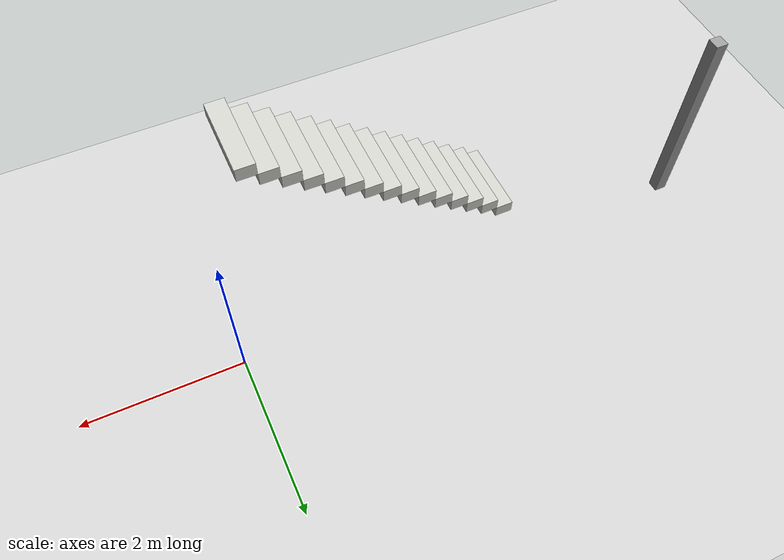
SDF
<sdf version="1.6">
 <world name="default">
  <model name="ground_plane">
   <static>1</static>
   <link name="link">
    <collision name="collision">
     <geometry><plane><normal>0 0 1</normal><size>100 100</size></plane></geometry>
     <surface><friction><ode><mu>100</mu><mu2>50</mu2></ode></friction></surface>
    </collision>
    <visual name="visual">
     <cast_shadows>0</cast_shadows>
     <geometry><plane><normal>0 0 1</normal><size>100 100</size></plane></geometry>
     <material>
      <script><uri>file://media/materials/scripts/gazebo.material</uri><name>Gazebo/Grey</name></script>
     </material>
    </visual>
   </link>
  </model>
  <model name="Building">
   <link name="Stairs_0">
    <pose>0 0.612988 0 0 -0 0</pose>
    <visual name="Stairs_0_Visual_0">
     <pose>2.30777 -1.25113 0.083333 0 -0 1.5708</pose>
     <geometry><box><size>1 0.233333 0.166667</size></box></geometry>
     <material>
      <script><uri>file://media/materials/scripts/gazebo.material</uri><name>Gazebo/CeilingTiled</name></script>
      <ambient>1 1 1 1</ambient>
      <shader type="pixel"/>
      <diffuse>1 1 1 1</diffuse>
      <specular>0 0 0 1</specular>
      <emissive>0 0 0 1</emissive>
     </material>
     <meta><layer>0</layer></meta>
    </visual>
    <visual name="Stairs_0_Visual_1">
     <pose>2.5411 -1.25113 0.25 0 -0 1.5708</pose>
     <geometry><box><size>1 0.233333 0.166667</size></box></geometry>
     <material>
      <script><uri>file://media/materials/scripts/gazebo.material</uri><name>Gazebo/CeilingTiled</name></script>
      <ambient>1 1 1 1</ambient>
      <shader type="pixel"/>
      <diffuse>1 1 1 1</diffuse>
      <specular>0 0 0 1</specular>
      <emissive>0 0 0 1</emissive>
     </material>
     <meta><layer>0</layer></meta>
    </visual>
    <visual name="Stairs_0_Visual_2">
     <pose>2.77444 -1.25113 0.416667 0 -0 1.5708</pose>
     <geometry><box><size>1 0.233333 0.166667</size></box></geometry>
     <material>
      <script><uri>file://media/materials/scripts/gazebo.material</uri><name>Gazebo/CeilingTiled</name></script>
      <ambient>1 1 1 1</ambient>
      <shader type="pixel"/>
      <diffuse>1 1 1 1</diffuse>
      <specular>0 0 0 1</specular>
      <emissive>0 0 0 1</emissive>
     </material>
     <meta><layer>0</layer></meta>
    </visual>
    <visual name="Stairs_0_Visual_3">
     <pose>3.00777 -1.25113 0.583333 0 -0 1.5708</pose>
     <geometry><box><size>1 0.233333 0.166667</size></box></geometry>
     <material>
      <script><uri>file://media/materials/scripts/gazebo.material</uri><name>Gazebo/CeilingTiled</name></script>
      <ambient>1 1 1 1</ambient>
      <shader type="pixel"/>
      <diffuse>1 1 1 1</diffuse>
      <specular>0 0 0 1</specular>
      <emissive>0 0 0 1</emissive>
     </material>
     <meta><layer>0</layer></meta>
    </visual>
    <visual name="Stairs_0_Visual_4">
     <pose>3.2411 -1.25113 0.75 0 -0 1.5708</pose>
     <geometry><box><size>1 0.233333 0.166667</size></box></geometry>
     <material>
      <script><uri>file://media/materials/scripts/gazebo.material</uri><name>Gazebo/CeilingTiled</name></script>
      <ambient>1 1 1 1</ambient>
      <shader type="pixel"/>
      <diffuse>1 1 1 1</diffuse>
      <specular>0 0 0 1</specular>
      <emissive>0 0 0 1</emissive>
     </material>
     <meta><layer>0</layer></meta>
    </visual>
    <visual name="Stairs_0_Visual_5">
     <pose>3.47444 -1.25113 0.916667 0 -0 1.5708</pose>
     <geometry><box><size>1 0.233333 0.166667</size></box></geometry>
     <material>
      <script><uri>file://media/materials/scripts/gazebo.material</uri><name>Gazebo/CeilingTiled</name></script>
      <ambient>1 1 1 1</ambient>
      <shader type="pixel"/>
      <diffuse>1 1 1 1</diffuse>
      <specular>0 0 0 1</specular>
      <emissive>0 0 0 1</emissive>
     </material>
     <meta><layer>0</layer></meta>
    </visual>
    <visual name="Stairs_0_Visual_6">
     <pose>3.70777 -1.25113 1.08333 0 -0 1.5708</pose>
     <geometry><box><size>1 0.233333 0.166667</size></box></geometry>
     <material>
      <script><uri>file://media/materials/scripts/gazebo.material</uri><name>Gazebo/CeilingTiled</name></script>
      <ambient>1 1 1 1</ambient>
      <shader type="pixel"/>
      <diffuse>1 1 1 1</diffuse>
      <specular>0 0 0 1</specular>
      <emissive>0 0 0 1</emissive>
     </material>
     <meta><layer>0</layer></meta>
    </visual>
    <visual name="Stairs_0_Visual_7">
     <pose>3.9411 -1.25113 1.25 0 -0 1.5708</pose>
     <geometry><box><size>1 0.233333 0.166667</size></box></geometry>
     <material>
      <script><uri>file://media/materials/scripts/gazebo.material</uri><name>Gazebo/CeilingTiled</name></script>
      <ambient>1 1 1 1</ambient>
      <shader type="pixel"/>
      <diffuse>1 1 1 1</diffuse>
      <specular>0 0 0 1</specular>
      <emissive>0 0 0 1</emissive>
     </material>
     <meta><layer>0</layer></meta>
    </visual>
    <visual name="Stairs_0_Visual_8">
     <pose>4.17444 -1.25113 1.41667 0 -0 1.5708</pose>
     <geometry><box><size>1 0.233333 0.166667</size></box></geometry>
     <material>
      <script><uri>file://media/materials/scripts/gazebo.material</uri><name>Gazebo/CeilingTiled</name></script>
      <ambient>1 1 1 1</ambient>
      <shader type="pixel"/>
      <diffuse>1 1 1 1</diffuse>
      <specular>0 0 0 1</specular>
      <emissive>0 0 0 1</emissive>
     </material>
     <meta><layer>0</layer></meta>
    </visual>
    <visual name="Stairs_0_Visual_9">
     <pose>4.40777 -1.25113 1.58333 0 -0 1.5708</pose>
     <geometry><box><size>1 0.233333 0.166667</size></box></geometry>
     <material>
      <script><uri>file://media/materials/scripts/gazebo.material</uri><name>Gazebo/CeilingTiled</name></script>
      <ambient>1 1 1 1</ambient>
      <shader type="pixel"/>
      <diffuse>1 1 1 1</diffuse>
      <specular>0 0 0 1</specular>
      <emissive>0 0 0 1</emissive>
     </material>
     <meta><layer>0</layer></meta>
    </visual>
    <visual name="Stairs_0_Visual_10">
     <pose>4.6411 -1.25113 1.75 0 -0 1.5708</pose>
     <geometry><box><size>1 0.233333 0.166667</size></box></geometry>
     <material>
      <script><uri>file://media/materials/scripts/gazebo.material</uri><name>Gazebo/CeilingTiled</name></script>
      <ambient>1 1 1 1</ambient>
      <shader type="pixel"/>
      <diffuse>1 1 1 1</diffuse>
      <specular>0 0 0 1</specular>
      <emissive>0 0 0 1</emissive>
     </material>
     <meta><layer>0</layer></meta>
    </visual>
    <visual name="Stairs_0_Visual_11">
     <pose>4.87444 -1.25113 1.91667 0 -0 1.5708</pose>
     <geometry><box><size>1 0.233333 0.166667</size></box></geometry>
     <material>
      <script><uri>file://media/materials/scripts/gazebo.material</uri><name>Gazebo/CeilingTiled</name></script>
      <ambient>1 1 1 1</ambient>
      <shader type="pixel"/>
      <diffuse>1 1 1 1</diffuse>
      <specular>0 0 0 1</specular>
      <emissive>0 0 0 1</emissive>
     </material>
     <meta><layer>0</layer></meta>
    </visual>
    <visual name="Stairs_0_Visual_12">
     <pose>5.10777 -1.25113 2.08333 0 -0 1.5708</pose>
     <geometry><box><size>1 0.233333 0.166667</size></box></geometry>
     <material>
      <script><uri>file://media/materials/scripts/gazebo.material</uri><name>Gazebo/CeilingTiled</name></script>
      <ambient>1 1 1 1</ambient>
      <shader type="pixel"/>
      <diffuse>1 1 1 1</diffuse>
      <specular>0 0 0 1</specular>
      <emissive>0 0 0 1</emissive>
     </material>
     <meta><layer>0</layer></meta>
    </visual>
    <visual name="Stairs_0_Visual_13">
     <pose>5.3411 -1.25113 2.25 0 -0 1.5708</pose>
     <geometry><box><size>1 0.233333 0.166667</size></box></geometry>
     <material>
      <script><uri>file://media/materials/scripts/gazebo.material</uri><name>Gazebo/CeilingTiled</name></script>
      <ambient>1 1 1 1</ambient>
      <shader type="pixel"/>
      <diffuse>1 1 1 1</diffuse>
      <specular>0 0 0 1</specular>
      <emissive>0 0 0 1</emissive>
     </material>
     <meta><layer>0</layer></meta>
    </visual>
    <visual name="Stairs_0_Visual_14">
     <pose>5.57444 -1.25113 2.41667 0 -0 1.5708</pose>
     <geometry><box><size>1 0.233333 0.166667</size></box></geometry>
     <material>
      <script><uri>file://media/materials/scripts/gazebo.material</uri><name>Gazebo/CeilingTiled</name></script>
      <ambient>1 1 1 1</ambient>
      <shader type="pixel"/>
      <diffuse>1 1 1 1</diffuse>
      <specular>0 0 0 1</specular>
      <emissive>0 0 0 1</emissive>
     </material>
     <meta><layer>0</layer></meta>
    </visual>
    <collision name="Stairs_0_Collision_0">
     <pose>2.30777 -1.25113 0.083333 0 -0 1.5708</pose>
     <geometry><box><size>1 0.233333 0.166667</size></box></geometry>
     <surface>
      <friction>
       <ode><mu>1</mu><mu2>1</mu2><fdir1>0 0 0</fdir1><slip1>0</slip1><slip2>0</slip2></ode>
       <torsional>
        <coefficient>1</coefficient>
        <patch_radius>0</patch_radius>
        <surface_radius>0</surface_radius>
        <use_patch_radius>1</use_patch_radius>
        <ode><slip>0</slip></ode>
       </torsional>
      </friction>
      <bounce><restitution_coefficient>0</restitution_coefficient><threshold>1e+06</threshold></bounce>
      <contact>
       <collide_without_contact>0</collide_without_contact>
       <collide_without_contact_bitmask>1</collide_without_contact_bitmask>
       <collide_bitmask>1</collide_bitmask>
       <ode>
        <soft_cfm>0</soft_cfm>
        <soft_erp>0.2</soft_erp>
        <kp>1e+13</kp>
        <kd>1</kd>
        <max_vel>0.01</max_vel>
        <min_depth>0</min_depth>
       </ode>
       <bullet>
        <split_impulse>1</split_impulse>
        <split_impulse_penetration_threshold>-0.01</split_impulse_penetration_threshold>
        <soft_cfm>0</soft_cfm>
        <soft_erp>0.2</soft_erp>
        <kp>1e+13</kp>
        <kd>1</kd>
       </bullet>
      </contact>
     </surface>
    </collision>
    <collision name="Stairs_0_Collision_1">
     <pose>2.5411 -1.25113 0.25 0 -0 1.5708</pose>
     <geometry><box><size>1 0.233333 0.166667</size></box></geometry>
     <surface>
      <friction>
       <ode><mu>1</mu><mu2>1</mu2><fdir1>0 0 0</fdir1><slip1>0</slip1><slip2>0</slip2></ode>
       <torsional>
        <coefficient>1</coefficient>
        <patch_radius>0</patch_radius>
        <surface_radius>0</surface_radius>
        <use_patch_radius>1</use_patch_radius>
        <ode><slip>0</slip></ode>
       </torsional>
      </friction>
      <bounce><restitution_coefficient>0</restitution_coefficient><threshold>1e+06</threshold></bounce>
      <contact>
       <collide_without_contact>0</collide_without_contact>
       <collide_without_contact_bitmask>1</collide_without_contact_bitmask>
       <collide_bitmask>1</collide_bitmask>
       <ode>
        <soft_cfm>0</soft_cfm>
        <soft_erp>0.2</soft_erp>
        <kp>1e+13</kp>
        <kd>1</kd>
        <max_vel>0.01</max_vel>
        <min_depth>0</min_depth>
       </ode>
       <bullet>
        <split_impulse>1</split_impulse>
        <split_impulse_penetration_threshold>-0.01</split_impulse_penetration_threshold>
        <soft_cfm>0</soft_cfm>
        <soft_erp>0.2</soft_erp>
        <kp>1e+13</kp>
        <kd>1</kd>
       </bullet>
      </contact>
     </surface>
    </collision>
    <collision name="Stairs_0_Collision_2">
     <pose>2.77444 -1.25113 0.416667 0 -0 1.5708</pose>
     <geometry><box><size>1 0.233333 0.166667</size></box></geometry>
     <surface>
      <friction>
       <ode><mu>1</mu><mu2>1</mu2><fdir1>0 0 0</fdir1><slip1>0</slip1><slip2>0</slip2></ode>
       <torsional>
        <coefficient>1</coefficient>
        <patch_radius>0</patch_radius>
        <surface_radius>0</surface_radius>
        <use_patch_radius>1</use_patch_radius>
        <ode><slip>0</slip></ode>
       </torsional>
      </friction>
      <bounce><restitution_coefficient>0</restitution_coefficient><threshold>1e+06</threshold></bounce>
      <contact>
       <collide_without_contact>0</collide_without_contact>
       <collide_without_contact_bitmask>1</collide_without_contact_bitmask>
       <collide_bitmask>1</collide_bitmask>
       <ode>
        <soft_cfm>0</soft_cfm>
        <soft_erp>0.2</soft_erp>
        <kp>1e+13</kp>
        <kd>1</kd>
        <max_vel>0.01</max_vel>
        <min_depth>0</min_depth>
       </ode>
       <bullet>
        <split_impulse>1</split_impulse>
        <split_impulse_penetration_threshold>-0.01</split_impulse_penetration_threshold>
        <soft_cfm>0</soft_cfm>
        <soft_erp>0.2</soft_erp>
        <kp>1e+13</kp>
        <kd>1</kd>
       </bullet>
      </contact>
     </surface>
    </collision>
    <collision name="Stairs_0_Collision_3">
     <pose>3.00777 -1.25113 0.583333 0 -0 1.5708</pose>
     <geometry><box><size>1 0.233333 0.166667</size></box></geometry>
     <surface>
      <friction>
       <ode><mu>1</mu><mu2>1</mu2><fdir1>0 0 0</fdir1><slip1>0</slip1><slip2>0</slip2></ode>
       <torsional>
        <coefficient>1</coefficient>
        <patch_radius>0</patch_radius>
        <surface_radius>0</surface_radius>
        <use_patch_radius>1</use_patch_radius>
        <ode><slip>0</slip></ode>
       </torsional>
      </friction>
      <bounce><restitution_coefficient>0</restitution_coefficient><threshold>1e+06</threshold></bounce>
      <contact>
       <collide_without_contact>0</collide_without_contact>
       <collide_without_contact_bitmask>1</collide_without_contact_bitmask>
       <collide_bitmask>1</collide_bitmask>
       <ode>
        <soft_cfm>0</soft_cfm>
        <soft_erp>0.2</soft_erp>
        <kp>1e+13</kp>
        <kd>1</kd>
        <max_vel>0.01</max_vel>
        <min_depth>0</min_depth>
       </ode>
       <bullet>
        <split_impulse>1</split_impulse>
        <split_impulse_penetration_threshold>-0.01</split_impulse_penetration_threshold>
        <soft_cfm>0</soft_cfm>
        <soft_erp>0.2</soft_erp>
        <kp>1e+13</kp>
        <kd>1</kd>
       </bullet>
      </contact>
     </surface>
    </collision>
    <collision name="Stairs_0_Collision_4">
     <pose>3.2411 -1.25113 0.75 0 -0 1.5708</pose>
     <geometry><box><size>1 0.233333 0.166667</size></box></geometry>
     <surface>
      <friction>
       <ode><mu>1</mu><mu2>1</mu2><fdir1>0 0 0</fdir1><slip1>0</slip1><slip2>0</slip2></ode>
       <torsional>
        <coefficient>1</coefficient>
        <patch_radius>0</patch_radius>
        <surface_radius>0</surface_radius>
        <use_patch_radius>1</use_patch_radius>
        <ode><slip>0</slip></ode>
       </torsional>
      </friction>
      <bounce><restitution_coefficient>0</restitution_coefficient><threshold>1e+06</threshold></bounce>
      <contact>
       <collide_without_contact>0</collide_without_contact>
       <collide_without_contact_bitmask>1</collide_without_contact_bitmask>
       <collide_bitmask>1</collide_bitmask>
       <ode>
        <soft_cfm>0</soft_cfm>
        <soft_erp>0.2</soft_erp>
        <kp>1e+13</kp>
        <kd>1</kd>
        <max_vel>0.01</max_vel>
        <min_depth>0</min_depth>
       </ode>
       <bullet>
        <split_impulse>1</split_impulse>
        <split_impulse_penetration_threshold>-0.01</split_impulse_penetration_threshold>
        <soft_cfm>0</soft_cfm>
        <soft_erp>0.2</soft_erp>
        <kp>1e+13</kp>
        <kd>1</kd>
       </bullet>
      </contact>
     </surface>
    </collision>
    <collision name="Stairs_0_Collision_5">
     <pose>3.47444 -1.25113 0.916667 0 -0 1.5708</pose>
     <geometry><box><size>1 0.233333 0.166667</size></box></geometry>
     <surface>
      <friction>
       <ode><mu>1</mu><mu2>1</mu2><fdir1>0 0 0</fdir1><slip1>0</slip1><slip2>0</slip2></ode>
       <torsional>
        <coefficient>1</coefficient>
        <patch_radius>0</patch_radius>
        <surface_radius>0</surface_radius>
        <use_patch_radius>1</use_patch_radius>
        <ode><slip>0</slip></ode>
       </torsional>
      </friction>
      <bounce><restitution_coefficient>0</restitution_coefficient><threshold>1e+06</threshold></bounce>
      <contact>
       <collide_without_contact>0</collide_without_contact>
       <collide_without_contact_bitmask>1</collide_without_contact_bitmask>
       <collide_bitmask>1</collide_bitmask>
       <ode>
        <soft_cfm>0</soft_cfm>
        <soft_erp>0.2</soft_erp>
        <kp>1e+13</kp>
        <kd>1</kd>
        <max_vel>0.01</max_vel>
        <min_depth>0</min_depth>
       </ode>
       <bullet>
        <split_impulse>1</split_impulse>
        <split_impulse_penetration_threshold>-0.01</split_impulse_penetration_threshold>
        <soft_cfm>0</soft_cfm>
        <soft_erp>0.2</soft_erp>
        <kp>1e+13</kp>
        <kd>1</kd>
       </bullet>
      </contact>
     </surface>
    </collision>
    <collision name="Stairs_0_Collision_6">
     <pose>3.70777 -1.25113 1.08333 0 -0 1.5708</pose>
     <geometry><box><size>1 0.233333 0.166667</size></box></geometry>
     <surface>
      <friction>
       <ode><mu>1</mu><mu2>1</mu2><fdir1>0 0 0</fdir1><slip1>0</slip1><slip2>0</slip2></ode>
       <torsional>
        <coefficient>1</coefficient>
        <patch_radius>0</patch_radius>
        <surface_radius>0</surface_radius>
        <use_patch_radius>1</use_patch_radius>
        <ode><slip>0</slip></ode>
       </torsional>
      </friction>
      <bounce><restitution_coefficient>0</restitution_coefficient><threshold>1e+06</threshold></bounce>
      <contact>
       <collide_without_contact>0</collide_without_contact>
       <collide_without_contact_bitmask>1</collide_without_contact_bitmask>
       <collide_bitmask>1</collide_bitmask>
       <ode>
        <soft_cfm>0</soft_cfm>
        <soft_erp>0.2</soft_erp>
        <kp>1e+13</kp>
        <kd>1</kd>
        <max_vel>0.01</max_vel>
        <min_depth>0</min_depth>
       </ode>
       <bullet>
        <split_impulse>1</split_impulse>
        <split_impulse_penetration_threshold>-0.01</split_impulse_penetration_threshold>
        <soft_cfm>0</soft_cfm>
        <soft_erp>0.2</soft_erp>
        <kp>1e+13</kp>
        <kd>1</kd>
       </bullet>
      </contact>
     </surface>
    </collision>
    <collision name="Stairs_0_Collision_7">
     <pose>3.9411 -1.25113 1.25 0 -0 1.5708</pose>
     <geometry><box><size>1 0.233333 0.166667</size></box></geometry>
     <surface>
      <friction>
       <ode><mu>1</mu><mu2>1</mu2><fdir1>0 0 0</fdir1><slip1>0</slip1><slip2>0</slip2></ode>
       <torsional>
        <coefficient>1</coefficient>
        <patch_radius>0</patch_radius>
        <surface_radius>0</surface_radius>
        <use_patch_radius>1</use_patch_radius>
        <ode><slip>0</slip></ode>
       </torsional>
      </friction>
      <bounce><restitution_coefficient>0</restitution_coefficient><threshold>1e+06</threshold></bounce>
      <contact>
       <collide_without_contact>0</collide_without_contact>
       <collide_without_contact_bitmask>1</collide_without_contact_bitmask>
       <collide_bitmask>1</collide_bitmask>
       <ode>
        <soft_cfm>0</soft_cfm>
        <soft_erp>0.2</soft_erp>
        <kp>1e+13</kp>
        <kd>1</kd>
        <max_vel>0.01</max_vel>
        <min_depth>0</min_depth>
       </ode>
       <bullet>
        <split_impulse>1</split_impulse>
        <split_impulse_penetration_threshold>-0.01</split_impulse_penetration_threshold>
        <soft_cfm>0</soft_cfm>
        <soft_erp>0.2</soft_erp>
        <kp>1e+13</kp>
        <kd>1</kd>
       </bullet>
      </contact>
     </surface>
    </collision>
    <collision name="Stairs_0_Collision_8">
     <pose>4.17444 -1.25113 1.41667 0 -0 1.5708</pose>
     <geometry><box><size>1 0.233333 0.166667</size></box></geometry>
     <surface>
      <friction>
       <ode><mu>1</mu><mu2>1</mu2><fdir1>0 0 0</fdir1><slip1>0</slip1><slip2>0</slip2></ode>
       <torsional>
        <coefficient>1</coefficient>
        <patch_radius>0</patch_radius>
        <surface_radius>0</surface_radius>
        <use_patch_radius>1</use_patch_radius>
        <ode><slip>0</slip></ode>
       </torsional>
      </friction>
      <bounce><restitution_coefficient>0</restitution_coefficient><threshold>1e+06</threshold></bounce>
      <contact>
       <collide_without_contact>0</collide_without_contact>
       <collide_without_contact_bitmask>1</collide_without_contact_bitmask>
       <collide_bitmask>1</collide_bitmask>
       <ode>
        <soft_cfm>0</soft_cfm>
        <soft_erp>0.2</soft_erp>
        <kp>1e+13</kp>
        <kd>1</kd>
        <max_vel>0.01</max_vel>
        <min_depth>0</min_depth>
       </ode>
       <bullet>
        <split_impulse>1</split_impulse>
        <split_impulse_penetration_threshold>-0.01</split_impulse_penetration_threshold>
        <soft_cfm>0</soft_cfm>
        <soft_erp>0.2</soft_erp>
        <kp>1e+13</kp>
        <kd>1</kd>
       </bullet>
      </contact>
     </surface>
    </collision>
    <collision name="Stairs_0_Collision_14">
     <pose>5.57444 -1.25113 2.41667 0 -0 1.5708</pose>
     <geometry><box><size>1 0.233333 0.166667</size></box></geometry>
     <surface>
      <friction>
       <ode><mu>1</mu><mu2>1</mu2><fdir1>0 0 0</fdir1><slip1>0</slip1><slip2>0</slip2></ode>
       <torsional>
        <coefficient>1</coefficient>
        <patch_radius>0</patch_radius>
        <surface_radius>0</surface_radius>
        <use_patch_radius>1</use_patch_radius>
        <ode><slip>0</slip></ode>
       </torsional>
      </friction>
      <bounce><restitution_coefficient>0</restitution_coefficient><threshold>1e+06</threshold></bounce>
      <contact>
       <collide_without_contact>0</collide_without_contact>
       <collide_without_contact_bitmask>1</collide_without_contact_bitmask>
       <collide_bitmask>1</collide_bitmask>
       <ode>
        <soft_cfm>0</soft_cfm>
        <soft_erp>0.2</soft_erp>
        <kp>1e+13</kp>
        <kd>1</kd>
        <max_vel>0.01</max_vel>
        <min_depth>0</min_depth>
       </ode>
       <bullet>
        <split_impulse>1</split_impulse>
        <split_impulse_penetration_threshold>-0.01</split_impulse_penetration_threshold>
        <soft_cfm>0</soft_cfm>
        <soft_erp>0.2</soft_erp>
        <kp>1e+13</kp>
        <kd>1</kd>
       </bullet>
      </contact>
     </surface>
    </collision>
    <collision name="Stairs_0_Collision_9">
     <pose>4.40777 -1.25113 1.58333 0 -0 1.5708</pose>
     <geometry><box><size>1 0.233333 0.166667</size></box></geometry>
     <surface>
      <friction>
       <ode><mu>1</mu><mu2>1</mu2><fdir1>0 0 0</fdir1><slip1>0</slip1><slip2>0</slip2></ode>
       <torsional>
        <coefficient>1</coefficient>
        <patch_radius>0</patch_radius>
        <surface_radius>0</surface_radius>
        <use_patch_radius>1</use_patch_radius>
        <ode><slip>0</slip></ode>
       </torsional>
      </friction>
      <bounce><restitution_coefficient>0</restitution_coefficient><threshold>1e+06</threshold></bounce>
      <contact>
       <collide_without_contact>0</collide_without_contact>
       <collide_without_contact_bitmask>1</collide_without_contact_bitmask>
       <collide_bitmask>1</collide_bitmask>
       <ode>
        <soft_cfm>0</soft_cfm>
        <soft_erp>0.2</soft_erp>
        <kp>1e+13</kp>
        <kd>1</kd>
        <max_vel>0.01</max_vel>
        <min_depth>0</min_depth>
       </ode>
       <bullet>
        <split_impulse>1</split_impulse>
        <split_impulse_penetration_threshold>-0.01</split_impulse_penetration_threshold>
        <soft_cfm>0</soft_cfm>
        <soft_erp>0.2</soft_erp>
        <kp>1e+13</kp>
        <kd>1</kd>
       </bullet>
      </contact>
     </surface>
    </collision>
    <collision name="Stairs_0_Collision_10">
     <pose>4.6411 -1.25113 1.75 0 -0 1.5708</pose>
     <geometry><box><size>1 0.233333 0.166667</size></box></geometry>
     <surface>
      <friction>
       <ode><mu>1</mu><mu2>1</mu2><fdir1>0 0 0</fdir1><slip1>0</slip1><slip2>0</slip2></ode>
       <torsional>
        <coefficient>1</coefficient>
        <patch_radius>0</patch_radius>
        <surface_radius>0</surface_radius>
        <use_patch_radius>1</use_patch_radius>
        <ode><slip>0</slip></ode>
       </torsional>
      </friction>
      <bounce><restitution_coefficient>0</restitution_coefficient><threshold>1e+06</threshold></bounce>
      <contact>
       <collide_without_contact>0</collide_without_contact>
       <collide_without_contact_bitmask>1</collide_without_contact_bitmask>
       <collide_bitmask>1</collide_bitmask>
       <ode>
        <soft_cfm>0</soft_cfm>
        <soft_erp>0.2</soft_erp>
        <kp>1e+13</kp>
        <kd>1</kd>
        <max_vel>0.01</max_vel>
        <min_depth>0</min_depth>
       </ode>
       <bullet>
        <split_impulse>1</split_impulse>
        <split_impulse_penetration_threshold>-0.01</split_impulse_penetration_threshold>
        <soft_cfm>0</soft_cfm>
        <soft_erp>0.2</soft_erp>
        <kp>1e+13</kp>
        <kd>1</kd>
       </bullet>
      </contact>
     </surface>
    </collision>
    <collision name="Stairs_0_Collision_11">
     <pose>4.87444 -1.25113 1.91667 0 -0 1.5708</pose>
     <geometry><box><size>1 0.233333 0.166667</size></box></geometry>
     <surface>
      <friction>
       <ode><mu>1</mu><mu2>1</mu2><fdir1>0 0 0</fdir1><slip1>0</slip1><slip2>0</slip2></ode>
       <torsional>
        <coefficient>1</coefficient>
        <patch_radius>0</patch_radius>
        <surface_radius>0</surface_radius>
        <use_patch_radius>1</use_patch_radius>
        <ode><slip>0</slip></ode>
       </torsional>
      </friction>
      <bounce><restitution_coefficient>0</restitution_coefficient><threshold>1e+06</threshold></bounce>
      <contact>
       <collide_without_contact>0</collide_without_contact>
       <collide_without_contact_bitmask>1</collide_without_contact_bitmask>
       <collide_bitmask>1</collide_bitmask>
       <ode>
        <soft_cfm>0</soft_cfm>
        <soft_erp>0.2</soft_erp>
        <kp>1e+13</kp>
        <kd>1</kd>
        <max_vel>0.01</max_vel>
        <min_depth>0</min_depth>
       </ode>
       <bullet>
        <split_impulse>1</split_impulse>
        <split_impulse_penetration_threshold>-0.01</split_impulse_penetration_threshold>
        <soft_cfm>0</soft_cfm>
        <soft_erp>0.2</soft_erp>
        <kp>1e+13</kp>
        <kd>1</kd>
       </bullet>
      </contact>
     </surface>
    </collision>
    <collision name="Stairs_0_Collision_12">
     <pose>5.10777 -1.25113 2.08333 0 -0 1.5708</pose>
     <geometry><box><size>1 0.233333 0.166667</size></box></geometry>
     <surface>
      <friction>
       <ode><mu>1</mu><mu2>1</mu2><fdir1>0 0 0</fdir1><slip1>0</slip1><slip2>0</slip2></ode>
       <torsional>
        <coefficient>1</coefficient>
        <patch_radius>0</patch_radius>
        <surface_radius>0</surface_radius>
        <use_patch_radius>1</use_patch_radius>
        <ode><slip>0</slip></ode>
       </torsional>
      </friction>
      <bounce><restitution_coefficient>0</restitution_coefficient><threshold>1e+06</threshold></bounce>
      <contact>
       <collide_without_contact>0</collide_without_contact>
       <collide_without_contact_bitmask>1</collide_without_contact_bitmask>
       <collide_bitmask>1</collide_bitmask>
       <ode>
        <soft_cfm>0</soft_cfm>
        <soft_erp>0.2</soft_erp>
        <kp>1e+13</kp>
        <kd>1</kd>
        <max_vel>0.01</max_vel>
        <min_depth>0</min_depth>
       </ode>
       <bullet>
        <split_impulse>1</split_impulse>
        <split_impulse_penetration_threshold>-0.01</split_impulse_penetration_threshold>
        <soft_cfm>0</soft_cfm>
        <soft_erp>0.2</soft_erp>
        <kp>1e+13</kp>
        <kd>1</kd>
       </bullet>
      </contact>
     </surface>
    </collision>
    <collision name="Stairs_0_Collision_13">
     <pose>5.3411 -1.25113 2.25 0 -0 1.5708</pose>
     <geometry><box><size>1 0.233333 0.166667</size></box></geometry>
     <surface>
      <friction>
       <ode><mu>1</mu><mu2>1</mu2><fdir1>0 0 0</fdir1><slip1>0</slip1><slip2>0</slip2></ode>
       <torsional>
        <coefficient>1</coefficient>
        <patch_radius>0</patch_radius>
        <surface_radius>0</surface_radius>
        <use_patch_radius>1</use_patch_radius>
        <ode><slip>0</slip></ode>
       </torsional>
      </friction>
      <bounce><restitution_coefficient>0</restitution_coefficient><threshold>1e+06</threshold></bounce>
      <contact>
       <collide_without_contact>0</collide_without_contact>
       <collide_without_contact_bitmask>1</collide_without_contact_bitmask>
       <collide_bitmask>1</collide_bitmask>
       <ode>
        <soft_cfm>0</soft_cfm>
        <soft_erp>0.2</soft_erp>
        <kp>1e+13</kp>
        <kd>1</kd>
        <max_vel>0.01</max_vel>
        <min_depth>0</min_depth>
       </ode>
       <bullet>
        <split_impulse>1</split_impulse>
        <split_impulse_penetration_threshold>-0.01</split_impulse_penetration_threshold>
        <soft_cfm>0</soft_cfm>
        <soft_erp>0.2</soft_erp>
        <kp>1e+13</kp>
        <kd>1</kd>
       </bullet>
      </contact>
     </surface>
    </collision>
   </link>
   <link name="Wall_28">
    <pose>0.160561 0.3 0 0 -0 0</pose>
    <visual name="Wall_28_Visual">
     <pose>0 0 1.25 0 -0 0</pose>
     <geometry><box><size>0.15 0.15 2.5</size></box></geometry>
     <material>
      <script><uri>file://media/materials/scripts/gazebo.material</uri><name>Gazebo/Grey</name></script>
      <ambient>1 1 1 1</ambient>
      <shader type="pixel"/>
      <diffuse>0.7 0.7 0.7 1</diffuse>
      <specular>0.01 0.01 0.01 1</specular>
      <emissive>0 0 0 1</emissive>
     </material>
     <meta><layer>0</layer></meta>
    </visual>
    <collision name="Wall_28_Collision">
     <pose>0 0 1.25 0 -0 0</pose>
     <geometry><box><size>0.15 0.15 2.5</size></box></geometry>
     <surface>
      <friction>
       <ode><mu>1</mu><mu2>1</mu2><fdir1>0 0 0</fdir1><slip1>0</slip1><slip2>0</slip2></ode>
       <torsional>
        <coefficient>1</coefficient>
        <patch_radius>0</patch_radius>
        <surface_radius>0</surface_radius>
        <use_patch_radius>1</use_patch_radius>
        <ode><slip>0</slip></ode>
       </torsional>
      </friction>
      <bounce><restitution_coefficient>0</restitution_coefficient><threshold>1e+06</threshold></bounce>
      <contact>
       <collide_without_contact>0</collide_without_contact>
       <collide_without_contact_bitmask>1</collide_without_contact_bitmask>
       <collide_bitmask>1</collide_bitmask>
       <ode>
        <soft_cfm>0</soft_cfm>
        <soft_erp>0.2</soft_erp>
        <kp>1e+13</kp>
        <kd>1</kd>
        <max_vel>0.01</max_vel>
        <min_depth>0</min_depth>
       </ode>
       <bullet>
        <split_impulse>1</split_impulse>
        <split_impulse_penetration_threshold>-0.01</split_impulse_penetration_threshold>
        <soft_cfm>0</soft_cfm>
        <soft_erp>0.2</soft_erp>
        <kp>1e+13</kp>
        <kd>1</kd>
       </bullet>
      </contact>
     </surface>
    </collision>
   </link>
   <static>1</static>
   <pose>-6.1852 -0.576906 0 0 -0 0</pose>
  </model>
 </world>
</sdf>
